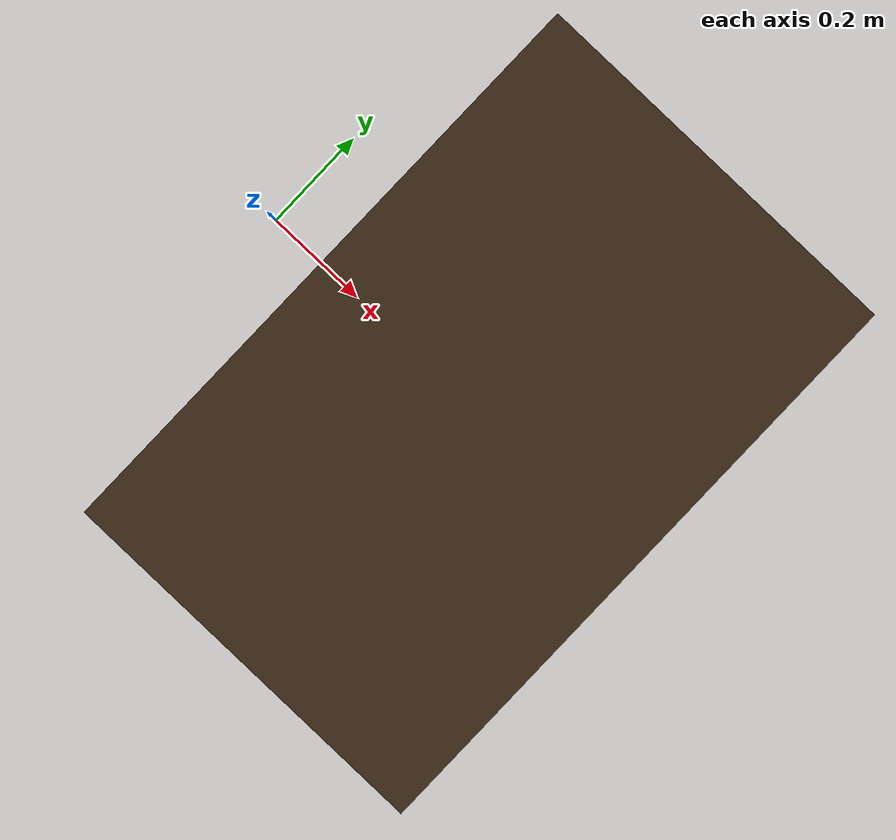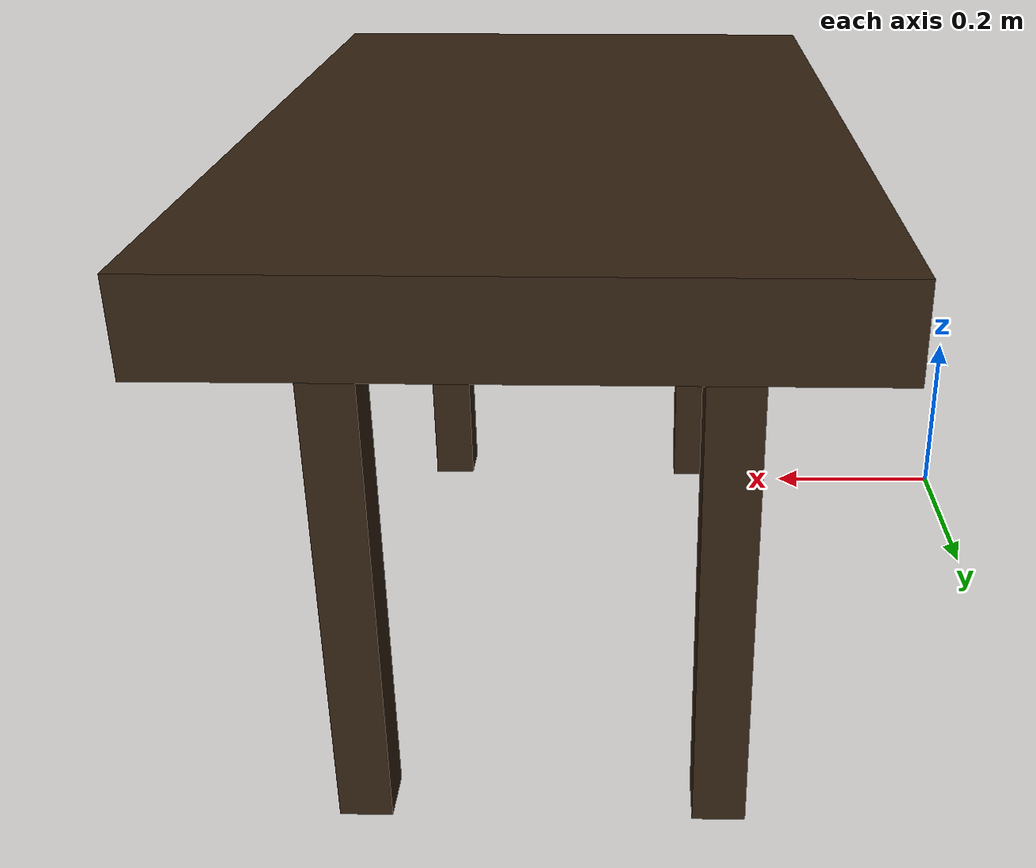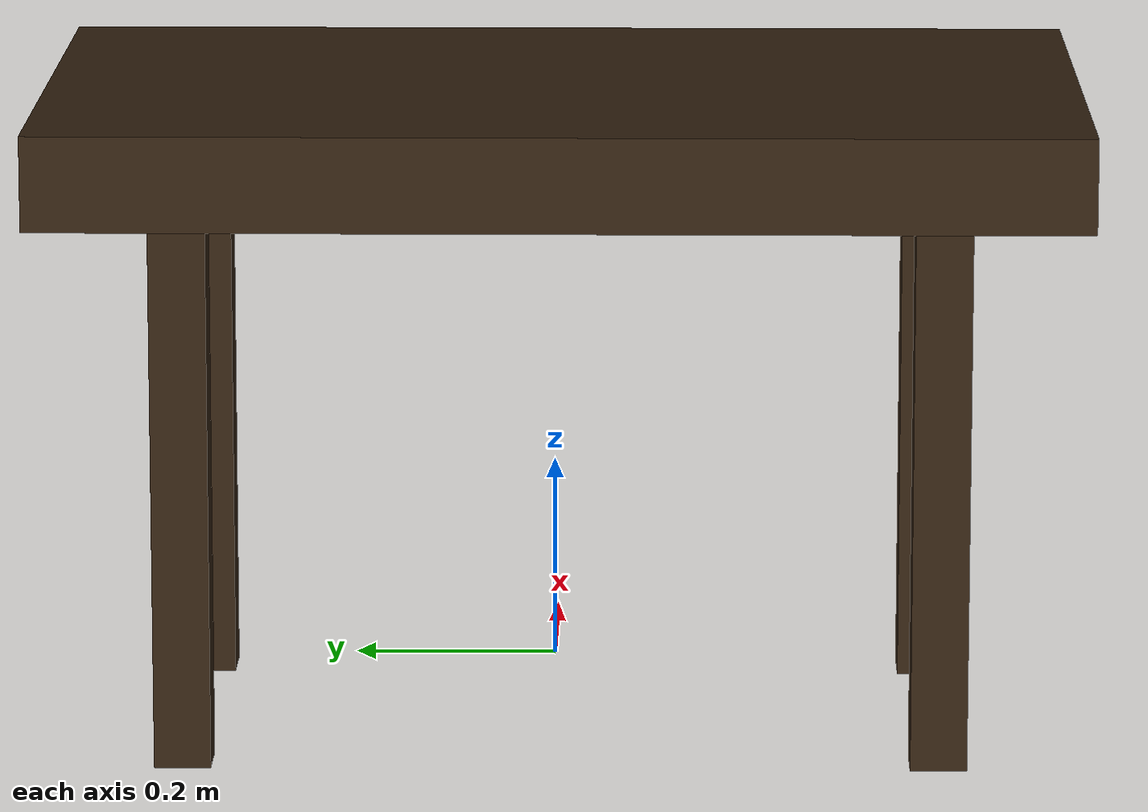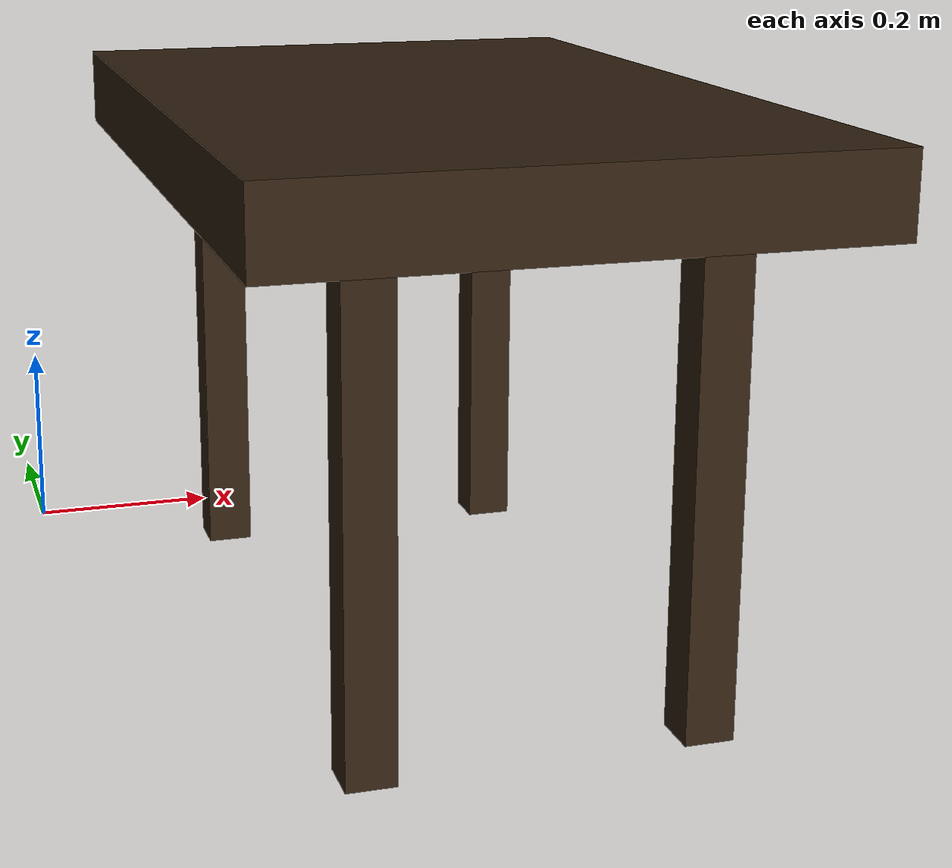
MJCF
<mujoco model="table">
  <worldbody>
    <body name="desk" pos="0.5 0 -0.15" quat="0 0 1 0">
      <geom name="top" type="box" pos="0 0 -0.6" size=".35 .55 .05" mass="0.001" material="top"/>
      <body name="leg" pos="0 0 0" quat="1 0 0 0">
        <geom name="table_leg_1" type="box" pos="-0.2 0.4 -0.27" size=".03 0.03 .32" mass="0.001" quat="0 1 0 0" material="leg"/>
        <geom name="table_leg_2" type="box" pos="0.2 -0.4 -0.27" size=".03 0.03 .32" mass="0.001" quat="0 1 0 0" material="leg"/>
        <geom name="table_leg_3" type="box" pos="0.2 0.4 -0.27" size=".03 0.03 .32" mass="0.001" quat="0 1 0 0" material="leg"/>
        <geom name="table_leg_4" type="box" pos="-0.2 -0.4 -0.27" size=".03 0.03 .32" mass="0.001" quat="0 1 0 0" material="leg"/>
      </body>
    </body>
  </worldbody>

  <asset>
    <material name="top" rgba="0.20000  0.13333  0.06667 1"/>
    <material name="leg" rgba="0.20000  0.13333  0.06667 1"/>
    <texture type="cube" name="wood" file="assets/wood.png"/>
    <material name="wood" texture="wood"/>
  </asset>

</mujoco>
